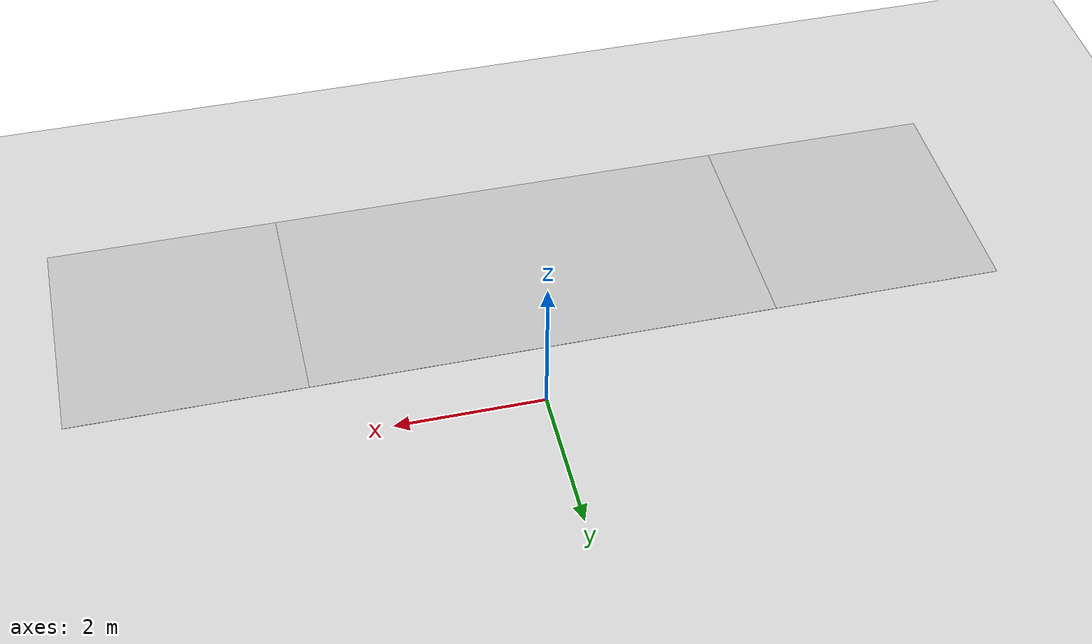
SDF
<?xml version="1.0" ?>
<sdf version="1.6">
  <world name="slope_generator_world">
    <physics name="default_physics" default="0" type="ode">
      <max_step_size>0.001</max_step_size>
      <real_time_factor>1</real_time_factor>
      <real_time_factor>1000</real_time_factor>
      <ode>
        <solver>
          <type>quick</type>
          <iters>100</iters>
          <sor>1.0</sor>
          <use_dynamic_moi_rescaling>false</use_dynamic_moi_rescaling>
        </solver>
      </ode>
    </physics>

    <include>
      <uri>model://ground_plane</uri>
    </include>

    <include>
      <uri>model://sun</uri>
    </include>

   <include>
      <uri>model://SLOPE_GENERATOR</uri>
     	<pose frame=''>0 0 1.0 0 0 0</pose>
       <plugin name="plugin" filename="libslope_generator_pkgs.so"/>
    </include>
  </world>
</sdf>

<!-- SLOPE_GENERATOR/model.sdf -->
<sdf version='1.6'>
  <model name='SLOPE_GENERATOR'>
    <joint name="fixed to ground" type="fixed">
      <parent>world</parent>
      <child>BASE_LINK</child>
    </joint>
    <link name='BASE_LINK'>
      <pose frame=''>0 0 0 0 -0 0</pose>
      <inertial>
        <pose frame=''>0 0 0 0 -0 0</pose>
        <mass>1000</mass>
        <inertia>
          <ixx>10000</ixx>
          <ixy>-3.574e-23</ixy>
          <ixz>7.1668e-38</ixz>
          <iyy>10000</iyy>
          <iyz>-1.6832e-22</iyz>
          <izz>10000</izz>
        </inertia>
      </inertial>
      <collision name='BASE_LINK_collision'>
        <pose frame=''>0 0 0 0 -0 0</pose>
        <geometry>
          <mesh>
            <scale>1 1 1</scale>
            <uri>model://SLOPE_GENERATOR/meshes/BASE_LINK.STL</uri>
          </mesh>
        </geometry>
      </collision>
      <visual name='BASE_LINK_visual'>
        <pose frame=''>0 0 0 0 -0 0</pose>
        <geometry>
          <mesh>
            <scale>1 1 1</scale>
            <uri>model://SLOPE_GENERATOR/meshes/BASE_LINK.STL</uri>
          </mesh>
        </geometry>
      </visual>
    </link>
    <link name='MIDDLE_LINK'>
      <pose frame=''>0 -1.505 0 0 -0 0</pose>
      <inertial>
        <pose frame=''>0 -0 -0 0 -0 0</pose>
        <mass>1000</mass>
        <inertia>
          <ixx>10000</ixx>
          <ixy>2.7259e-15</ixy>
          <ixz>-4.8154e-16</ixz>
          <iyy>10000</iyy>
          <iyz>-2.2029e-17</iyz>
          <izz>10000</izz>
        </inertia>
      </inertial>
      <collision name='MIDDLE_LINK_collision'>
        <pose frame=''>0 0 0 0 -0 0</pose>
        <geometry>
          <mesh>
            <scale>1 1 1</scale>
            <uri>model://SLOPE_GENERATOR/meshes/MIDDLE_LINK.STL</uri>
          </mesh>
        </geometry>
      </collision>
      <visual name='MIDDLE_LINK_visual'>
        <pose frame=''>0 0 0 0 -0 0</pose>
        <geometry>
          <mesh>
            <scale>1 1 1</scale>
            <uri>model://SLOPE_GENERATOR/meshes/MIDDLE_LINK.STL</uri>
          </mesh>
        </geometry>
      </visual>
    </link>
    <joint name='MIDDLE_JOINT' type='revolute'>
      <child>MIDDLE_LINK</child>
      <parent>BASE_LINK</parent>
      <axis>
        <xyz>0 1 0</xyz>
        <limit>
          <lower>-1e+16</lower>
          <upper>1e+16</upper>
        </limit>
        <dynamics>
          <spring_reference>0</spring_reference>
          <spring_stiffness>0</spring_stiffness>
        </dynamics>
        <use_parent_model_frame>1</use_parent_model_frame>
      </axis>
    </joint>
    <link name='END_LINK'>
      <pose frame=''>3 -1.505 0 0 0 0</pose>
      <inertial>
        <pose frame=''>1.5009 -0 0 0 -0 0</pose>
        <mass>1000</mass>
        <inertia>
          <ixx>5000</ixx>
          <ixy>1.1309e-14</ixy>
          <ixz>9.749e-19</ixz>
          <iyy>5000</iyy>
          <iyz>2.3223e-18</iyz>
          <izz>5000</izz>
        </inertia>
      </inertial>
      <collision name='END_LINK_collision'>
        <pose frame=''>0 0 0 0 -0 0</pose>
        <geometry>
          <mesh>
            <scale>1 1 1</scale>
            <uri>model://SLOPE_GENERATOR/meshes/END_LINK.STL</uri>
          </mesh>
        </geometry>
      </collision>
      <visual name='END_LINK_visual'>
        <pose frame=''>0 0 0 0 -0 0</pose>
        <geometry>
          <mesh>
            <scale>1 1 1</scale>
            <uri>model://SLOPE_GENERATOR/meshes/END_LINK.STL</uri>
          </mesh>
        </geometry>
      </visual>
    </link>
    <joint name='END_JOINT' type='revolute'>
      <child>END_LINK</child>
      <parent>MIDDLE_LINK</parent>
      <axis>
        <xyz>0 1 0</xyz>
        <limit>
          <lower>-1e+16</lower>
          <upper>1e+16</upper>
        </limit>
        <dynamics>
          <spring_reference>0</spring_reference>
          <spring_stiffness>0</spring_stiffness>
        </dynamics>
        <use_parent_model_frame>1</use_parent_model_frame>
      </axis>
    </joint>
    <link name='INIT_LINK'>
      <pose frame=''>-3 -1.505 0 0 -0 0</pose>
      <inertial>
        <pose frame=''>-1.5009 -0 0 0 -0 0</pose>
        <mass>1000</mass>
        <inertia>
          <ixx>5000</ixx>
          <ixy>-6.6608e-15</ixy>
          <ixz>6.0956e-18</ixz>
          <iyy>5000</iyy>
          <iyz>1.2777e-17</iyz>
          <izz>5000</izz>
        </inertia>
      </inertial>
      <collision name='INIT_LINK_collision'>
        <pose frame=''>0 0 0 0 -0 0</pose>
        <geometry>
          <mesh>
            <scale>1 1 1</scale>
            <uri>model://SLOPE_GENERATOR/meshes/INIT_LINK.STL</uri>
          </mesh>
        </geometry>
      </collision>
      <visual name='INIT_LINK_visual'>
        <pose frame=''>0 0 0 0 -0 0</pose>
        <geometry>
          <mesh>
            <scale>1 1 1</scale>
            <uri>model://SLOPE_GENERATOR/meshes/INIT_LINK.STL</uri>
          </mesh>
        </geometry>
      </visual>
    </link>
    <joint name='INIT_JOINT' type='revolute'>
      <child>INIT_LINK</child>
      <parent>MIDDLE_LINK</parent>
      <axis>
        <xyz>0 1 0</xyz>
        <limit>
          <lower>-1e+16</lower>
          <upper>1e+16</upper>
        </limit>
        <dynamics>
          <spring_reference>0</spring_reference>
          <spring_stiffness>0</spring_stiffness>
        </dynamics>
        <use_parent_model_frame>1</use_parent_model_frame>
      </axis>
    </joint>
  </model>
</sdf>
